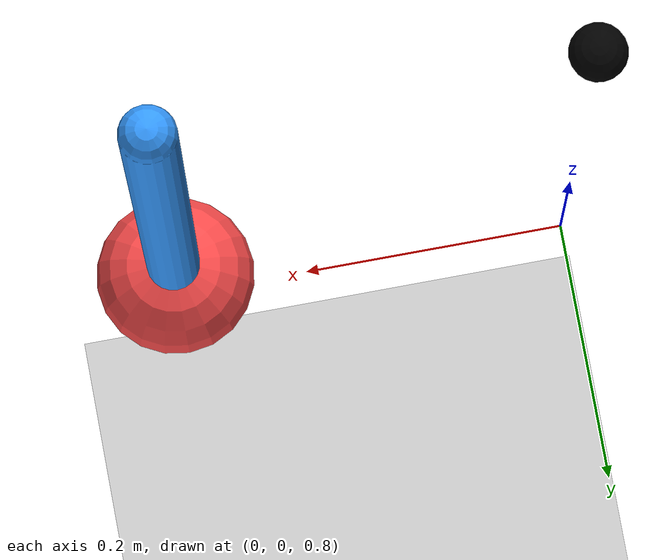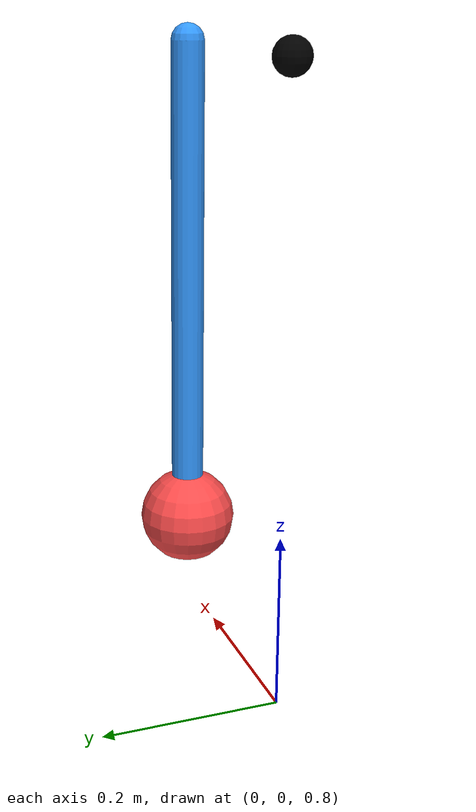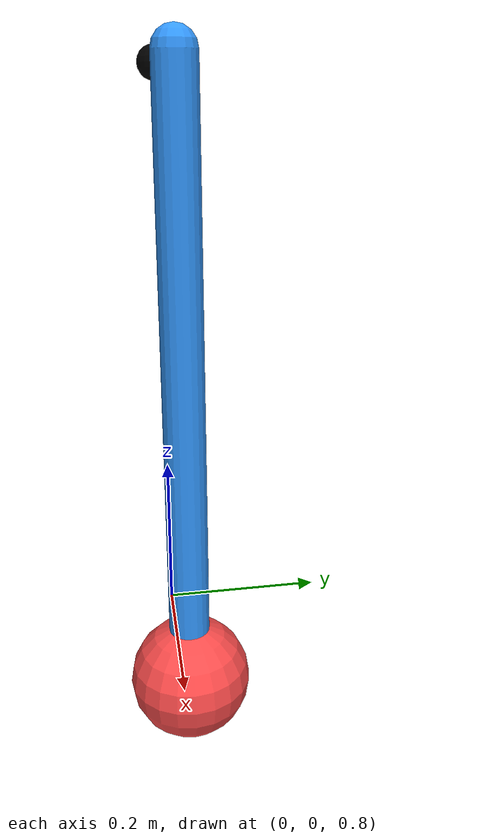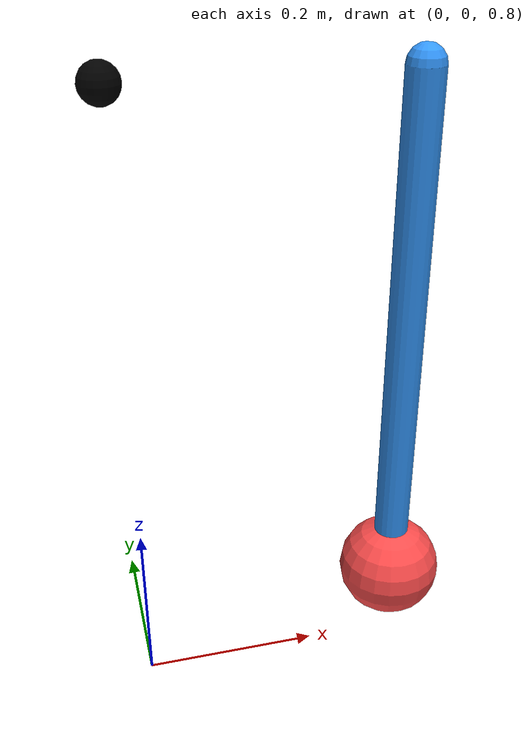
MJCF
<mujoco model="pendulum">
  <option gravity="0 0 -9.81"/>

  <worldbody>
    <light pos="0 0 3"/>
    <geom name="floor" type="plane" size="2 2 0.1" rgba=".8 .8 .8 1"/>

    <!-- Fixed pivot point -->
    <body name="pivot" pos="0 0 1.5">
      <geom type="sphere" size="0.02" rgba="0 0 0 1"/>

      <!-- Pendulum arm hanging from pivot -->
      <body name="arm" pos="0.3 0 0">
        <joint name="hinge" type="hinge" axis="0 1 0" damping="0.5"/>
        <geom type="capsule" fromto="0 0 0  0 0 -0.6" size="0.02" rgba="0.2 0.6 1 1"/>
        <!-- Bob at the end -->
        <body name="bob" pos="0 0 -0.6">
          <geom type="sphere" size="0.06" mass="1" rgba="1 0.3 0.3 1"/>
        </body>
      </body>
    </body>

  </worldbody>
  <keyframe>
    <key name="start" qpos="0.8"/>
  </keyframe>
</mujoco>
